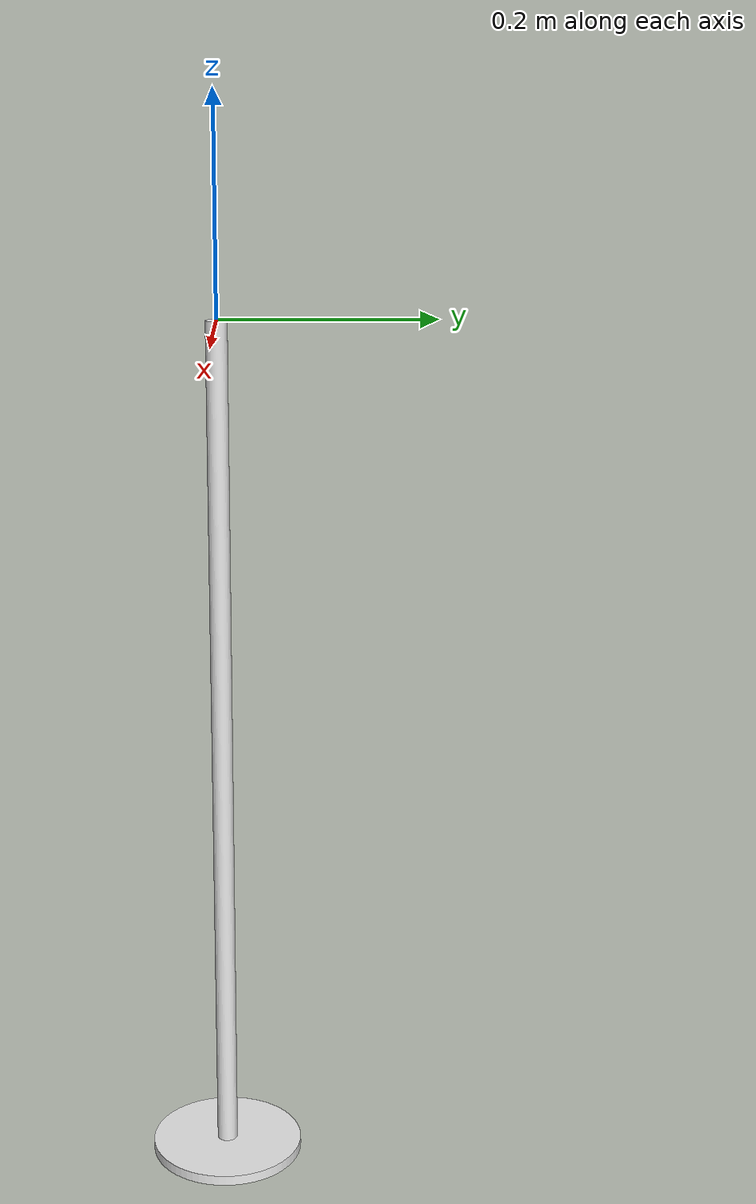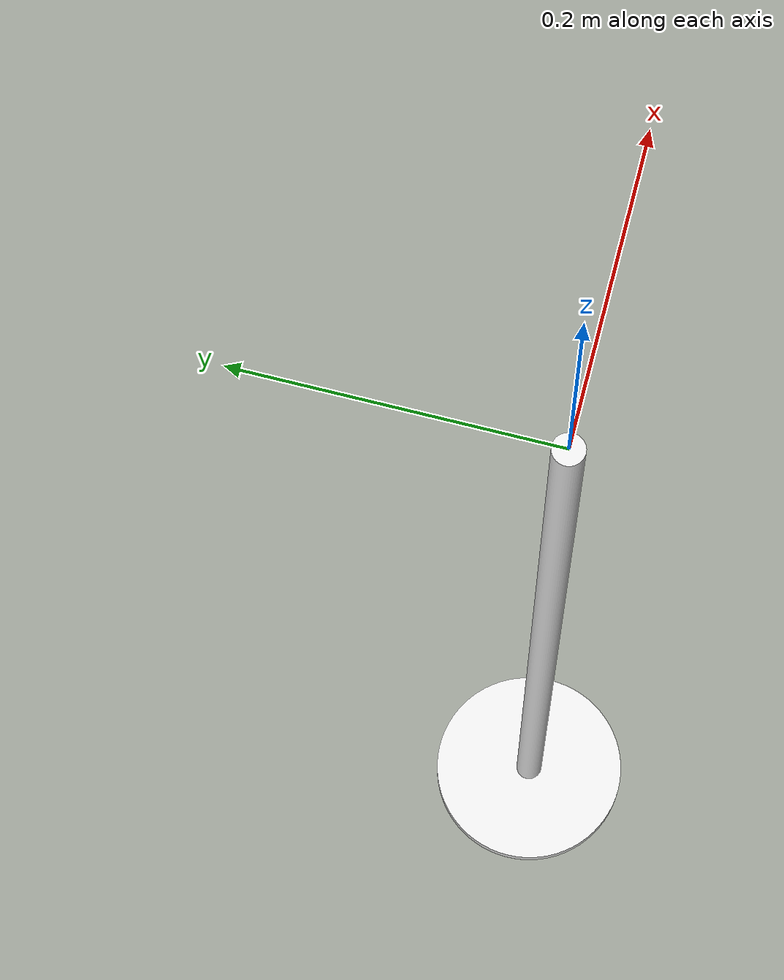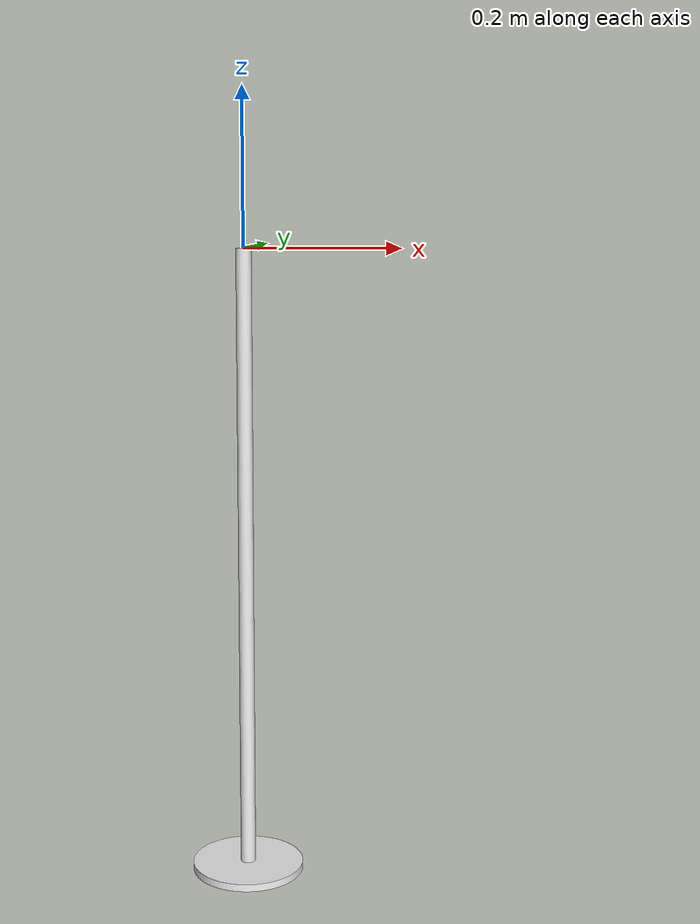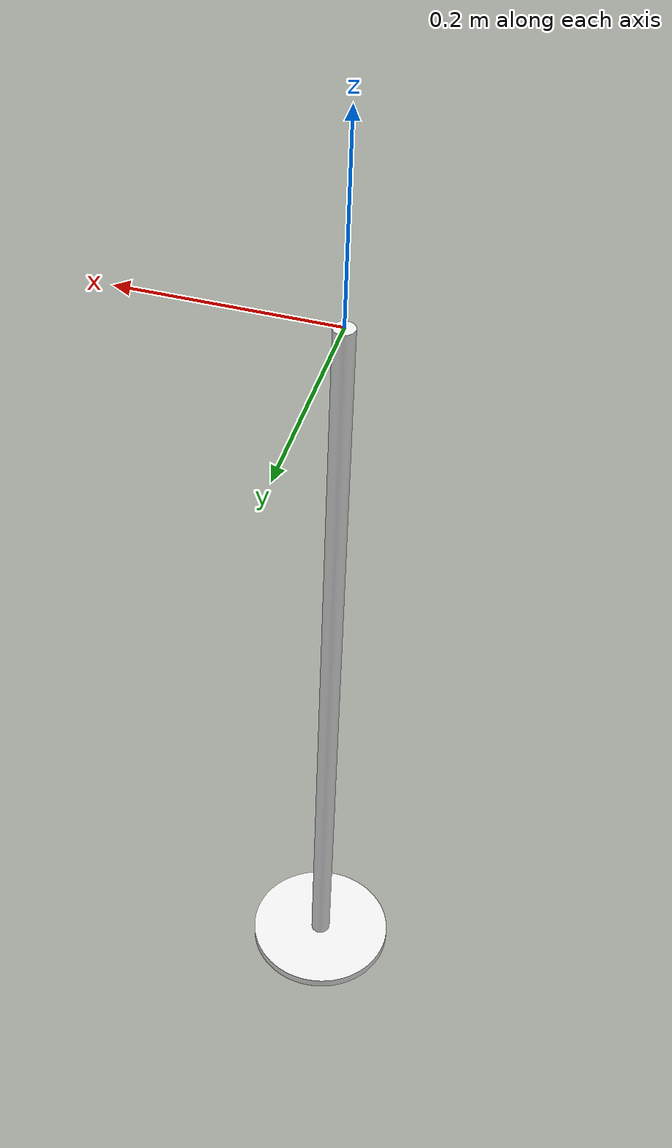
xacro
<?xml version="1.0"?>
<robot name="sanjiaojia" xmlns:xacro="http://www.ros.org/wiki/xacro">

  <xacro:property name="M_PI" value="3.1415926535897931"/>
  <xacro:property name="mass" value="2" /> <!-- arbitrary value for mass -->
  <xacro:property name="length" value="1.337" />
  <xacro:property name="width" value="0.787" />
  <xacro:property name="height" value="0.03" />

  <xacro:include filename="$(find object_description)/urdf/materials.xacro" />

  <link name="world"/>

  <joint name="sanjiaojia" type="fixed">
    <parent link="world"/>
    <child link="sanjiaojia"/>
    <origin xyz="0 0 0" rpy="${M_PI} 0 0"/>
  </joint>

  <!-- Basket link-->
    <link name="sanjiaojia">
      <visual>
        <origin xyz="0 0 0" rpy="0 0 0"/>
        <geometry>
          <mesh filename="package://object_description/meshes/sanjiaojia.stl" scale="0.001 0.001 0.001" />
        </geometry>
        <material name="white" />
      </visual>
      <collision>
        <origin xyz="0 0 0" rpy="0 0 0"/>
        <geometry>
          <mesh filename="package://object_description/meshes/sanjiaojia.stl" scale="0.001 0.001 0.001" />
        </geometry>
      </collision>

    <inertial>
      <origin xyz="0 0 0" rpy="0 0 0"/>
      <mass value="2"/>
      <inertia
	  ixx="${mass / 12.0 * (width*width + height*height)}" ixy="0.0" ixz="0.0"
	  iyy="${mass / 12.0 * (height*height + length*length)}" iyz="0.0"
	  izz="${mass / 12.0 * (length*length + width*width)}"/>
    </inertial>
  </link>

  <gazebo reference="sanjiaojia">
    <material>Gazebo/Black</material>
	<mu1>5000</mu1>
    <mu2>1000</mu2>
    <kp>10000000.0</kp>
    <kd>1.0</kd>
  </gazebo>

</robot>
